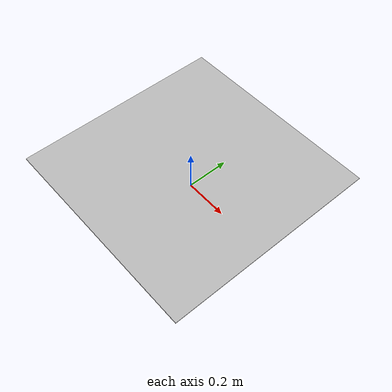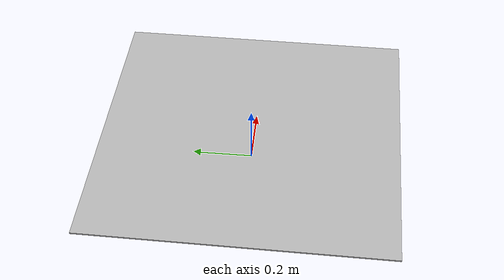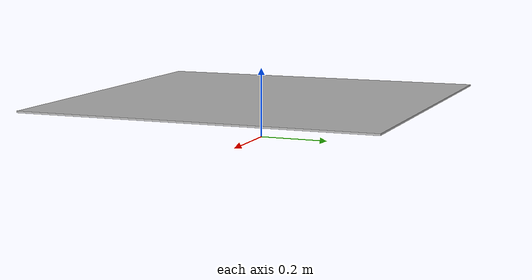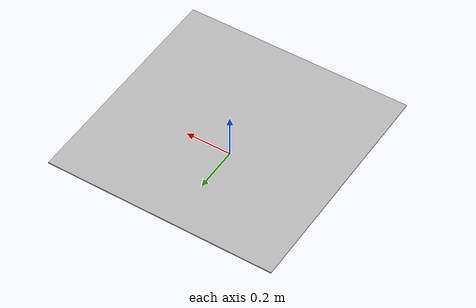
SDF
<?xml version='1.0'?>
<sdf version='1.4'>
  <model name="zhuangjiache">
    <link name='link'>
      <pose>0 0 0.115 0 0 0</pose>
      <inertial>
        <mass>3.390</mass>
        <inertia>
          <ixx>0.58</ixx>
          <ixy>0</ixy>
          <ixz>0</ixz>
          <iyy>0.58</iyy>
          <iyz>0</iyz>
          <izz>0.19</izz>
        </inertia>
      </inertial>
      <collision name='collision'>
        <geometry>
                <box>
                  <size>.496 .496 .005</size>
                </box>
        </geometry>
      </collision>

      <visual name='visual'>
        <geometry>
                <box>
                  <size>1 1 .005</size>
                </box>
        </geometry>

        <material>
          <script>
            <uri>model://zhuangjiache/materials/scripts</uri>
            <uri>model://zhuangjiache/materials/textures</uri>
            <name>Mark/Diffuse6</name>
          </script>
        </material>
      </visual>
    </link>
  </model>
</sdf>
